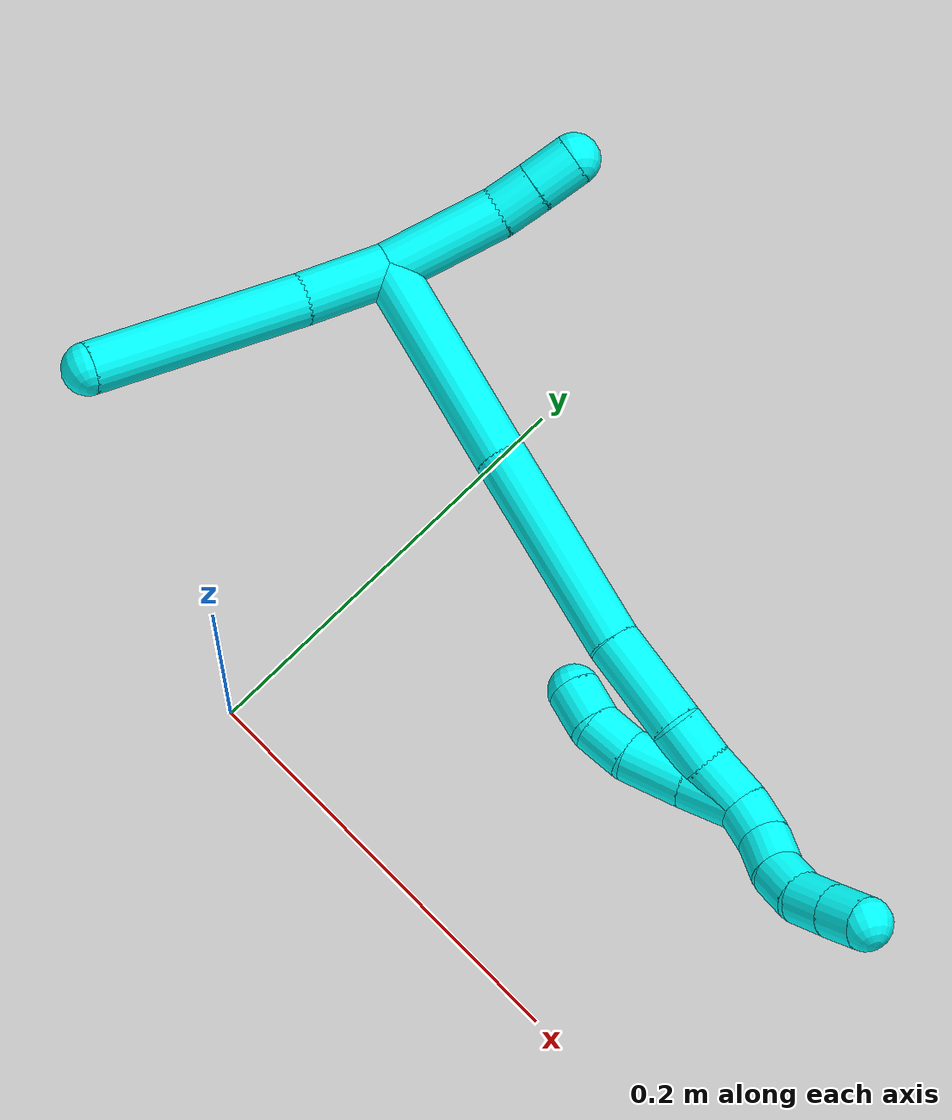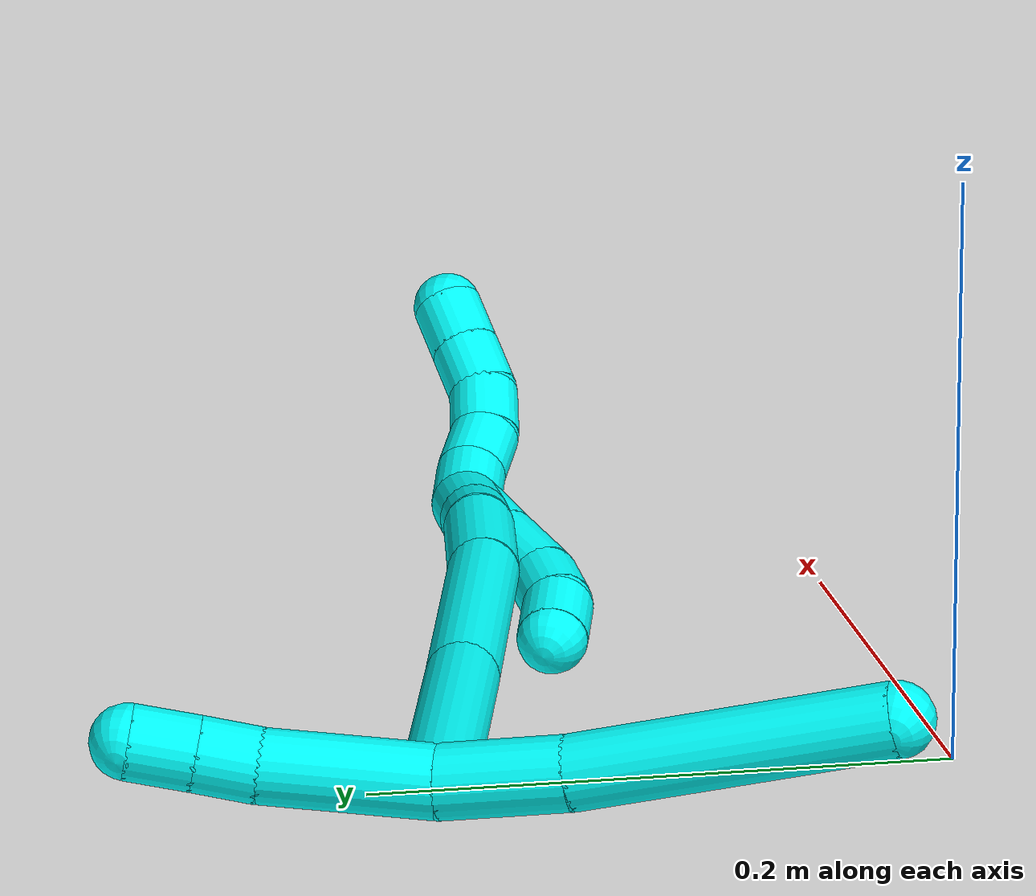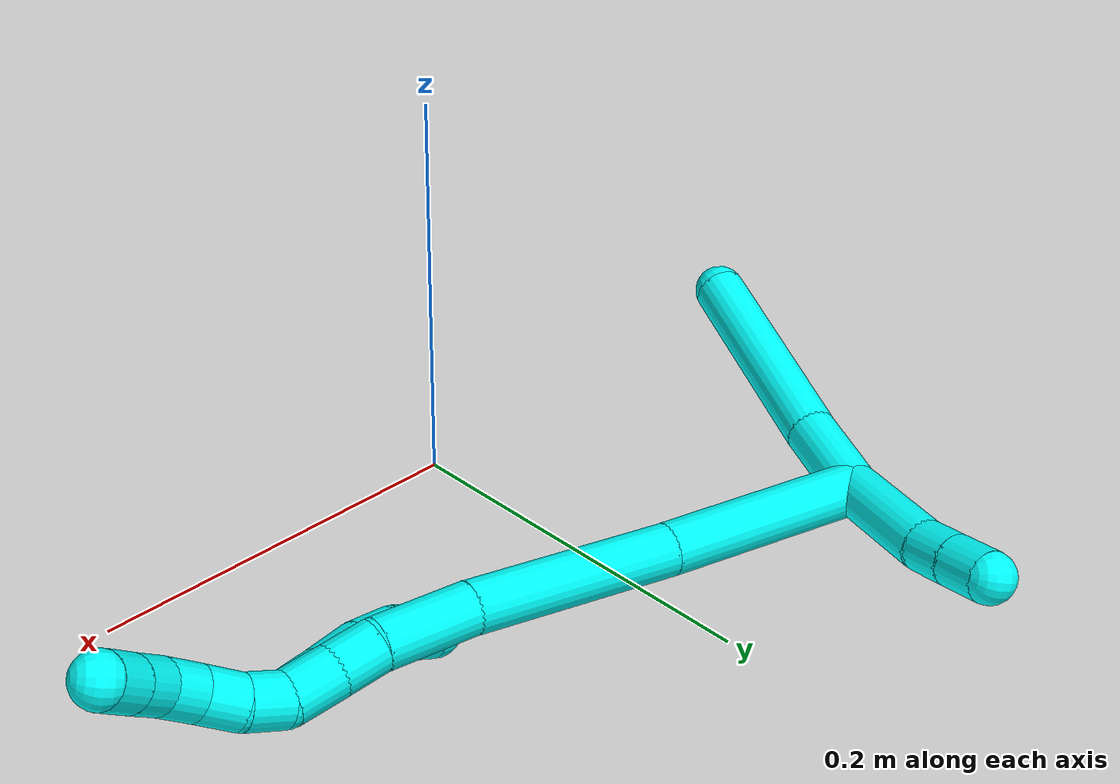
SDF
<sdf version="1.7">
 <world name="default">
  <model name="3">
   <static>0</static>
   <link name="3">
    <collision name="collision-cylinder-e_1_2_8">
     <pose>-0.01009 0.01889 -0.00238 -1.69613 -0.487317 0.549511</pose>
     <geometry><cylinder><radius>0.0125</radius><length>0.043095</length></cylinder></geometry>
     <surface>
      <friction><ode><mu>1.16</mu><mu2>1.16</mu2><slip1>0</slip1><slip2>0</slip2></ode></friction>
      <contact><ode><kp>1e+06</kp><kd>1</kd><max_vel>0</max_vel><min_depth>0.001</min_depth></ode></contact>
     </surface>
    </collision>
    <visual name="visual-cylinder-e_1_2_8">
     <pose>-0.01009 0.01889 -0.00238 -1.69613 -0.487317 0.549511</pose>
     <geometry><cylinder><radius>0.0125</radius><length>0.043095</length></cylinder></geometry>
     <material><ambient>0.003922 1 0.996078 1</ambient></material>
    </visual>
    <collision name="collision-cylinder-e_2_8_6">
     <pose>-0.049383 0.081968 -0.011953 -1.73216 -0.577987 0.672685</pose>
     <geometry><cylinder><radius>0.0125</radius><length>0.106905</length></cylinder></geometry>
     <surface>
      <friction><ode><mu>1.16</mu><mu2>1.16</mu2><slip1>0</slip1><slip2>0</slip2></ode></friction>
      <contact><ode><kp>1e+06</kp><kd>1</kd><max_vel>0</max_vel><min_depth>0.001</min_depth></ode></contact>
     </surface>
    </collision>
    <visual name="visual-cylinder-e_2_8_6">
     <pose>-0.049383 0.081968 -0.011953 -1.73216 -0.577987 0.672685</pose>
     <geometry><cylinder><radius>0.0125</radius><length>0.106905</length></cylinder></geometry>
     <material><ambient>0.003922 1 0.996078 1</ambient></material>
    </visual>
    <collision name="collision-cylinder-e_1_2_9">
     <pose>0.007841 -0.027206 0.003952 1.42656 0.277829 0.24078</pose>
     <geometry><cylinder><radius>0.0125</radius><length>0.057176</length></cylinder></geometry>
     <surface>
      <friction><ode><mu>1.16</mu><mu2>1.16</mu2><slip1>0</slip1><slip2>0</slip2></ode></friction>
      <contact><ode><kp>1e+06</kp><kd>1</kd><max_vel>0</max_vel><min_depth>0.001</min_depth></ode></contact>
     </surface>
    </collision>
    <visual name="visual-cylinder-e_1_2_9">
     <pose>0.007841 -0.027206 0.003952 1.42656 0.277829 0.24078</pose>
     <geometry><cylinder><radius>0.0125</radius><length>0.057176</length></cylinder></geometry>
     <material><ambient>0.003922 1 0.996078 1</ambient></material>
    </visual>
    <collision name="collision-cylinder-e_2_9_10">
     <pose>0.016895 -0.064535 0.009826 1.38303 0.117185 0.097051</pose>
     <geometry><cylinder><radius>0.0125</radius><length>0.020748</length></cylinder></geometry>
     <surface>
      <friction><ode><mu>1.16</mu><mu2>1.16</mu2><slip1>0</slip1><slip2>0</slip2></ode></friction>
      <contact><ode><kp>1e+06</kp><kd>1</kd><max_vel>0</max_vel><min_depth>0.001</min_depth></ode></contact>
     </surface>
    </collision>
    <visual name="visual-cylinder-e_2_9_10">
     <pose>0.016895 -0.064535 0.009826 1.38303 0.117185 0.097051</pose>
     <geometry><cylinder><radius>0.0125</radius><length>0.020748</length></cylinder></geometry>
     <material><ambient>0.003922 1 0.996078 1</ambient></material>
    </visual>
    <collision name="collision-cylinder-e_3_10_5">
     <pose>0.019396 -0.085375 0.014046 1.35971 0.117044 0.094658</pose>
     <geometry><cylinder><radius>0.0125</radius><length>0.022075</length></cylinder></geometry>
     <surface>
      <friction><ode><mu>1.16</mu><mu2>1.16</mu2><slip1>0</slip1><slip2>0</slip2></ode></friction>
      <contact><ode><kp>1e+06</kp><kd>1</kd><max_vel>0</max_vel><min_depth>0.001</min_depth></ode></contact>
     </surface>
    </collision>
    <visual name="visual-cylinder-e_3_10_5">
     <pose>0.019396 -0.085375 0.014046 1.35971 0.117044 0.094658</pose>
     <geometry><cylinder><radius>0.0125</radius><length>0.022075</length></cylinder></geometry>
     <material><ambient>0.003922 1 0.996078 1</ambient></material>
    </visual>
    <collision name="collision-cylinder-e_1_2_11">
     <pose>0.016881 -0.004861 -0.048818 3.04235 0.331407 2.56424</pose>
     <geometry><cylinder><radius>0.0125</radius><length>0.103766</length></cylinder></geometry>
     <surface>
      <friction><ode><mu>1.16</mu><mu2>1.16</mu2><slip1>0</slip1><slip2>0</slip2></ode></friction>
      <contact><ode><kp>1e+06</kp><kd>1</kd><max_vel>0</max_vel><min_depth>0.001</min_depth></ode></contact>
     </surface>
    </collision>
    <visual name="visual-cylinder-e_1_2_11">
     <pose>0.016881 -0.004861 -0.048818 3.04235 0.331407 2.56424</pose>
     <geometry><cylinder><radius>0.0125</radius><length>0.103766</length></cylinder></geometry>
     <material><ambient>0.003922 1 0.996078 1</ambient></material>
    </visual>
    <collision name="collision-cylinder-e_2_11_12">
     <pose>0.048477 -0.015282 -0.146015 3.02718 0.293444 2.4022</pose>
     <geometry><cylinder><radius>0.0125</radius><length>0.101744</length></cylinder></geometry>
     <surface>
      <friction><ode><mu>1.16</mu><mu2>1.16</mu2><slip1>0</slip1><slip2>0</slip2></ode></friction>
      <contact><ode><kp>1e+06</kp><kd>1</kd><max_vel>0</max_vel><min_depth>0.001</min_depth></ode></contact>
     </surface>
    </collision>
    <visual name="visual-cylinder-e_2_11_12">
     <pose>0.048477 -0.015282 -0.146015 3.02718 0.293444 2.4022</pose>
     <geometry><cylinder><radius>0.0125</radius><length>0.101744</length></cylinder></geometry>
     <material><ambient>0.003922 1 0.996078 1</ambient></material>
    </visual>
    <collision name="collision-cylinder-e_3_12_13">
     <pose>0.071151 -0.025533 -0.216229 2.92992 0.342342 2.03949</pose>
     <geometry><cylinder><radius>0.0125</radius><length>0.047418</length></cylinder></geometry>
     <surface>
      <friction><ode><mu>1.16</mu><mu2>1.16</mu2><slip1>0</slip1><slip2>0</slip2></ode></friction>
      <contact><ode><kp>1e+06</kp><kd>1</kd><max_vel>0</max_vel><min_depth>0.001</min_depth></ode></contact>
     </surface>
    </collision>
    <visual name="visual-cylinder-e_3_12_13">
     <pose>0.071151 -0.025533 -0.216229 2.92992 0.342342 2.03949</pose>
     <geometry><cylinder><radius>0.0125</radius><length>0.047418</length></cylinder></geometry>
     <material><ambient>0.003922 1 0.996078 1</ambient></material>
    </visual>
    <collision name="collision-cylinder-e_4_13_14">
     <pose>0.0847 -0.031963 -0.247492 2.95934 0.527915 2.4895</pose>
     <geometry><cylinder><radius>0.0125</radius><length>0.022195</length></cylinder></geometry>
     <surface>
      <friction><ode><mu>1.16</mu><mu2>1.16</mu2><slip1>0</slip1><slip2>0</slip2></ode></friction>
      <contact><ode><kp>1e+06</kp><kd>1</kd><max_vel>0</max_vel><min_depth>0.001</min_depth></ode></contact>
     </surface>
    </collision>
    <visual name="visual-cylinder-e_4_13_14">
     <pose>0.0847 -0.031963 -0.247492 2.95934 0.527915 2.4895</pose>
     <geometry><cylinder><radius>0.0125</radius><length>0.022195</length></cylinder></geometry>
     <material><ambient>0.003922 1 0.996078 1</ambient></material>
    </visual>
    <collision name="collision-cylinder-e_5_14_1">
     <pose>0.095913 -0.036764 -0.267584 2.86177 0.468989 2.07624</pose>
     <geometry><cylinder><radius>0.0125</radius><length>0.024877</length></cylinder></geometry>
     <surface>
      <friction><ode><mu>1.16</mu><mu2>1.16</mu2><slip1>0</slip1><slip2>0</slip2></ode></friction>
      <contact><ode><kp>1e+06</kp><kd>1</kd><max_vel>0</max_vel><min_depth>0.001</min_depth></ode></contact>
     </surface>
    </collision>
    <visual name="visual-cylinder-e_5_14_1">
     <pose>0.095913 -0.036764 -0.267584 2.86177 0.468989 2.07624</pose>
     <geometry><cylinder><radius>0.0125</radius><length>0.024877</length></cylinder></geometry>
     <material><ambient>0.003922 1 0.996078 1</ambient></material>
    </visual>
    <collision name="collision-cylinder-e_1_1_15">
     <pose>0.098538 -0.030569 -0.268194 -0.744317 -0.215797 0.084514</pose>
     <geometry><cylinder><radius>0.0125</radius><length>0.027985</length></cylinder></geometry>
     <surface>
      <friction><ode><mu>1.16</mu><mu2>1.16</mu2><slip1>0</slip1><slip2>0</slip2></ode></friction>
      <contact><ode><kp>1e+06</kp><kd>1</kd><max_vel>0</max_vel><min_depth>0.001</min_depth></ode></contact>
     </surface>
    </collision>
    <visual name="visual-cylinder-e_1_1_15">
     <pose>0.098538 -0.030569 -0.268194 -0.744317 -0.215797 0.084514</pose>
     <geometry><cylinder><radius>0.0125</radius><length>0.027985</length></cylinder></geometry>
     <material><ambient>0.003922 1 0.996078 1</ambient></material>
    </visual>
    <collision name="collision-cylinder-e_2_15_16">
     <pose>0.091569 -0.011863 -0.247214 -0.712871 -0.26842 0.100463</pose>
     <geometry><cylinder><radius>0.0125</radius><length>0.029961</length></cylinder></geometry>
     <surface>
      <friction><ode><mu>1.16</mu><mu2>1.16</mu2><slip1>0</slip1><slip2>0</slip2></ode></friction>
      <contact><ode><kp>1e+06</kp><kd>1</kd><max_vel>0</max_vel><min_depth>0.001</min_depth></ode></contact>
     </surface>
    </collision>
    <visual name="visual-cylinder-e_2_15_16">
     <pose>0.091569 -0.011863 -0.247214 -0.712871 -0.26842 0.100463</pose>
     <geometry><cylinder><radius>0.0125</radius><length>0.029961</length></cylinder></geometry>
     <material><ambient>0.003922 1 0.996078 1</ambient></material>
    </visual>
    <collision name="collision-cylinder-e_3_16_17">
     <pose>0.084884 0.002068 -0.227063 -0.452534 -0.258528 0.059831</pose>
     <geometry><cylinder><radius>0.0125</radius><length>0.021219</length></cylinder></geometry>
     <surface>
      <friction><ode><mu>1.16</mu><mu2>1.16</mu2><slip1>0</slip1><slip2>0</slip2></ode></friction>
      <contact><ode><kp>1e+06</kp><kd>1</kd><max_vel>0</max_vel><min_depth>0.001</min_depth></ode></contact>
     </surface>
    </collision>
    <visual name="visual-cylinder-e_3_16_17">
     <pose>0.084884 0.002068 -0.227063 -0.452534 -0.258528 0.059831</pose>
     <geometry><cylinder><radius>0.0125</radius><length>0.021219</length></cylinder></geometry>
     <material><ambient>0.003922 1 0.996078 1</ambient></material>
    </visual>
    <collision name="collision-cylinder-e_4_17_4">
     <pose>0.081424 0.00814 -0.20757 -0.15338 -0.071851 0.005523</pose>
     <geometry><cylinder><radius>0.0125</radius><length>0.020835</length></cylinder></geometry>
     <surface>
      <friction><ode><mu>1.16</mu><mu2>1.16</mu2><slip1>0</slip1><slip2>0</slip2></ode></friction>
      <contact><ode><kp>1e+06</kp><kd>1</kd><max_vel>0</max_vel><min_depth>0.001</min_depth></ode></contact>
     </surface>
    </collision>
    <visual name="visual-cylinder-e_4_17_4">
     <pose>0.081424 0.00814 -0.20757 -0.15338 -0.071851 0.005523</pose>
     <geometry><cylinder><radius>0.0125</radius><length>0.020835</length></cylinder></geometry>
     <material><ambient>0.003922 1 0.996078 1</ambient></material>
    </visual>
    <collision name="collision-cylinder-e_1_1_18">
     <pose>0.101979 -0.041593 -0.288081 2.96411 0.044481 0.489978</pose>
     <geometry><cylinder><radius>0.0125</radius><length>0.02</length></cylinder></geometry>
     <surface>
      <friction><ode><mu>1.16</mu><mu2>1.16</mu2><slip1>0</slip1><slip2>0</slip2></ode></friction>
      <contact><ode><kp>1e+06</kp><kd>1</kd><max_vel>0</max_vel><min_depth>0.001</min_depth></ode></contact>
     </surface>
    </collision>
    <visual name="visual-cylinder-e_1_1_18">
     <pose>0.101979 -0.041593 -0.288081 2.96411 0.044481 0.489978</pose>
     <geometry><cylinder><radius>0.0125</radius><length>0.02</length></cylinder></geometry>
     <material><ambient>0.003922 1 0.996078 1</ambient></material>
    </visual>
    <collision name="collision-cylinder-e_2_18_19">
     <pose>0.100672 -0.044033 -0.307736 3.07279 -0.176129 -2.39824</pose>
     <geometry><cylinder><radius>0.0125</radius><length>0.02</length></cylinder></geometry>
     <surface>
      <friction><ode><mu>1.16</mu><mu2>1.16</mu2><slip1>0</slip1><slip2>0</slip2></ode></friction>
      <contact><ode><kp>1e+06</kp><kd>1</kd><max_vel>0</max_vel><min_depth>0.001</min_depth></ode></contact>
     </surface>
    </collision>
    <visual name="visual-cylinder-e_2_18_19">
     <pose>0.100672 -0.044033 -0.307736 3.07279 -0.176129 -2.39824</pose>
     <geometry><cylinder><radius>0.0125</radius><length>0.02</length></cylinder></geometry>
     <material><ambient>0.003922 1 0.996078 1</ambient></material>
    </visual>
    <collision name="collision-cylinder-e_3_19_20">
     <pose>0.096811 -0.048247 -0.326671 2.77135 -0.212425 -1.0351</pose>
     <geometry><cylinder><radius>0.0125</radius><length>0.02</length></cylinder></geometry>
     <surface>
      <friction><ode><mu>1.16</mu><mu2>1.16</mu2><slip1>0</slip1><slip2>0</slip2></ode></friction>
      <contact><ode><kp>1e+06</kp><kd>1</kd><max_vel>0</max_vel><min_depth>0.001</min_depth></ode></contact>
     </surface>
    </collision>
    <visual name="visual-cylinder-e_3_19_20">
     <pose>0.096811 -0.048247 -0.326671 2.77135 -0.212425 -1.0351</pose>
     <geometry><cylinder><radius>0.0125</radius><length>0.02</length></cylinder></geometry>
     <material><ambient>0.003922 1 0.996078 1</ambient></material>
    </visual>
    <collision name="collision-cylinder-e_4_20_21">
     <pose>0.092761 -0.058088 -0.3433 2.44364 -0.195466 -0.526401</pose>
     <geometry><cylinder><radius>0.0125</radius><length>0.02</length></cylinder></geometry>
     <surface>
      <friction><ode><mu>1.16</mu><mu2>1.16</mu2><slip1>0</slip1><slip2>0</slip2></ode></friction>
      <contact><ode><kp>1e+06</kp><kd>1</kd><max_vel>0</max_vel><min_depth>0.001</min_depth></ode></contact>
     </surface>
    </collision>
    <visual name="visual-cylinder-e_4_20_21">
     <pose>0.092761 -0.058088 -0.3433 2.44364 -0.195466 -0.526401</pose>
     <geometry><cylinder><radius>0.0125</radius><length>0.02</length></cylinder></geometry>
     <material><ambient>0.003922 1 0.996078 1</ambient></material>
    </visual>
    <collision name="collision-cylinder-e_5_21_3">
     <pose>0.088671 -0.070795 -0.358191 2.42672 -0.21643 -0.566145</pose>
     <geometry><cylinder><radius>0.0125</radius><length>0.02</length></cylinder></geometry>
     <surface>
      <friction><ode><mu>1.16</mu><mu2>1.16</mu2><slip1>0</slip1><slip2>0</slip2></ode></friction>
      <contact><ode><kp>1e+06</kp><kd>1</kd><max_vel>0</max_vel><min_depth>0.001</min_depth></ode></contact>
     </surface>
    </collision>
    <visual name="visual-cylinder-e_5_21_3">
     <pose>0.088671 -0.070795 -0.358191 2.42672 -0.21643 -0.566145</pose>
     <geometry><cylinder><radius>0.0125</radius><length>0.02</length></cylinder></geometry>
     <material><ambient>0.003922 1 0.996078 1</ambient></material>
    </visual>
    <collision name="collision-sphere-3">
     <pose>0.086524 -0.077197 -0.365566 0 -0 0</pose>
     <geometry><sphere><radius>0.0125</radius></sphere></geometry>
     <surface>
      <friction><ode><mu>1.16</mu><mu2>1.16</mu2><slip1>0</slip1><slip2>0</slip2></ode></friction>
      <contact><ode><kp>1e+06</kp><kd>1</kd><max_vel>0</max_vel><min_depth>0.001</min_depth></ode></contact>
     </surface>
    </collision>
    <visual name="visual-sphere-3">
     <pose>0.086524 -0.077197 -0.365566 0 -0 0</pose>
     <geometry><sphere><radius>0.0125</radius></sphere></geometry>
     <material><ambient>0.003922 1 0.996078 1</ambient></material>
    </visual>
    <collision name="collision-sphere-21">
     <pose>0.090818 -0.064393 -0.350815 0 -0 0</pose>
     <geometry><sphere><radius>0.0125</radius></sphere></geometry>
     <surface>
      <friction><ode><mu>1.16</mu><mu2>1.16</mu2><slip1>0</slip1><slip2>0</slip2></ode></friction>
      <contact><ode><kp>1e+06</kp><kd>1</kd><max_vel>0</max_vel><min_depth>0.001</min_depth></ode></contact>
     </surface>
    </collision>
    <visual name="visual-sphere-21">
     <pose>0.090818 -0.064393 -0.350815 0 -0 0</pose>
     <geometry><sphere><radius>0.0125</radius></sphere></geometry>
     <material><ambient>0.003922 1 0.996078 1</ambient></material>
    </visual>
    <collision name="collision-sphere-20">
     <pose>0.094703 -0.051784 -0.335784 0 -0 0</pose>
     <geometry><sphere><radius>0.0125</radius></sphere></geometry>
     <surface>
      <friction><ode><mu>1.16</mu><mu2>1.16</mu2><slip1>0</slip1><slip2>0</slip2></ode></friction>
      <contact><ode><kp>1e+06</kp><kd>1</kd><max_vel>0</max_vel><min_depth>0.001</min_depth></ode></contact>
     </surface>
    </collision>
    <visual name="visual-sphere-20">
     <pose>0.094703 -0.051784 -0.335784 0 -0 0</pose>
     <geometry><sphere><radius>0.0125</radius></sphere></geometry>
     <material><ambient>0.003922 1 0.996078 1</ambient></material>
    </visual>
    <collision name="collision-sphere-19">
     <pose>0.09892 -0.04471 -0.317558 0 -0 0</pose>
     <geometry><sphere><radius>0.0125</radius></sphere></geometry>
     <surface>
      <friction><ode><mu>1.16</mu><mu2>1.16</mu2><slip1>0</slip1><slip2>0</slip2></ode></friction>
      <contact><ode><kp>1e+06</kp><kd>1</kd><max_vel>0</max_vel><min_depth>0.001</min_depth></ode></contact>
     </surface>
    </collision>
    <visual name="visual-sphere-19">
     <pose>0.09892 -0.04471 -0.317558 0 -0 0</pose>
     <geometry><sphere><radius>0.0125</radius></sphere></geometry>
     <material><ambient>0.003922 1 0.996078 1</ambient></material>
    </visual>
    <collision name="collision-sphere-5">
     <pose>0.020685 -0.096094 0.016343 0 -0 0</pose>
     <geometry><sphere><radius>0.0125</radius></sphere></geometry>
     <surface>
      <friction><ode><mu>1.16</mu><mu2>1.16</mu2><slip1>0</slip1><slip2>0</slip2></ode></friction>
      <contact><ode><kp>1e+06</kp><kd>1</kd><max_vel>0</max_vel><min_depth>0.001</min_depth></ode></contact>
     </surface>
    </collision>
    <visual name="visual-sphere-5">
     <pose>0.020685 -0.096094 0.016343 0 -0 0</pose>
     <geometry><sphere><radius>0.0125</radius></sphere></geometry>
     <material><ambient>0.003922 1 0.996078 1</ambient></material>
    </visual>
    <collision name="collision-sphere-10">
     <pose>0.018108 -0.074657 0.01175 0 -0 0</pose>
     <geometry><sphere><radius>0.0125</radius></sphere></geometry>
     <surface>
      <friction><ode><mu>1.16</mu><mu2>1.16</mu2><slip1>0</slip1><slip2>0</slip2></ode></friction>
      <contact><ode><kp>1e+06</kp><kd>1</kd><max_vel>0</max_vel><min_depth>0.001</min_depth></ode></contact>
     </surface>
    </collision>
    <visual name="visual-sphere-10">
     <pose>0.018108 -0.074657 0.01175 0 -0 0</pose>
     <geometry><sphere><radius>0.0125</radius></sphere></geometry>
     <material><ambient>0.003922 1 0.996078 1</ambient></material>
    </visual>
    <collision name="collision-sphere-6">
     <pose>-0.078586 0.126156 -0.019146 0 -0 0</pose>
     <geometry><sphere><radius>0.0125</radius></sphere></geometry>
     <surface>
      <friction><ode><mu>1.16</mu><mu2>1.16</mu2><slip1>0</slip1><slip2>0</slip2></ode></friction>
      <contact><ode><kp>1e+06</kp><kd>1</kd><max_vel>0</max_vel><min_depth>0.001</min_depth></ode></contact>
     </surface>
    </collision>
    <visual name="visual-sphere-6">
     <pose>-0.078586 0.126156 -0.019146 0 -0 0</pose>
     <geometry><sphere><radius>0.0125</radius></sphere></geometry>
     <material><ambient>0.003922 1 0.996078 1</ambient></material>
    </visual>
    <collision name="collision-sphere-9">
     <pose>0.015682 -0.054413 0.007903 0 -0 0</pose>
     <geometry><sphere><radius>0.0125</radius></sphere></geometry>
     <surface>
      <friction><ode><mu>1.16</mu><mu2>1.16</mu2><slip1>0</slip1><slip2>0</slip2></ode></friction>
      <contact><ode><kp>1e+06</kp><kd>1</kd><max_vel>0</max_vel><min_depth>0.001</min_depth></ode></contact>
     </surface>
    </collision>
    <visual name="visual-sphere-9">
     <pose>0.015682 -0.054413 0.007903 0 -0 0</pose>
     <geometry><sphere><radius>0.0125</radius></sphere></geometry>
     <material><ambient>0.003922 1 0.996078 1</ambient></material>
    </visual>
    <collision name="collision-sphere-2">
     <geometry><sphere><radius>0.0125</radius></sphere></geometry>
     <surface>
      <friction><ode><mu>1.16</mu><mu2>1.16</mu2><slip1>0</slip1><slip2>0</slip2></ode></friction>
      <contact><ode><kp>1e+06</kp><kd>1</kd><max_vel>0</max_vel><min_depth>0.001</min_depth></ode></contact>
     </surface>
    </collision>
    <visual name="visual-sphere-2">
     <geometry><sphere><radius>0.0125</radius></sphere></geometry>
     <material><ambient>0.003922 1 0.996078 1</ambient></material>
    </visual>
    <collision name="collision-sphere-8">
     <pose>-0.020179 0.03778 -0.00476 0 -0 0</pose>
     <geometry><sphere><radius>0.0125</radius></sphere></geometry>
     <surface>
      <friction><ode><mu>1.16</mu><mu2>1.16</mu2><slip1>0</slip1><slip2>0</slip2></ode></friction>
      <contact><ode><kp>1e+06</kp><kd>1</kd><max_vel>0</max_vel><min_depth>0.001</min_depth></ode></contact>
     </surface>
    </collision>
    <visual name="visual-sphere-8">
     <pose>-0.020179 0.03778 -0.00476 0 -0 0</pose>
     <geometry><sphere><radius>0.0125</radius></sphere></geometry>
     <material><ambient>0.003922 1 0.996078 1</ambient></material>
    </visual>
    <collision name="collision-sphere-11">
     <pose>0.033763 -0.009722 -0.097636 0 -0 0</pose>
     <geometry><sphere><radius>0.0125</radius></sphere></geometry>
     <surface>
      <friction><ode><mu>1.16</mu><mu2>1.16</mu2><slip1>0</slip1><slip2>0</slip2></ode></friction>
      <contact><ode><kp>1e+06</kp><kd>1</kd><max_vel>0</max_vel><min_depth>0.001</min_depth></ode></contact>
     </surface>
    </collision>
    <visual name="visual-sphere-11">
     <pose>0.033763 -0.009722 -0.097636 0 -0 0</pose>
     <geometry><sphere><radius>0.0125</radius></sphere></geometry>
     <material><ambient>0.003922 1 0.996078 1</ambient></material>
    </visual>
    <collision name="collision-sphere-12">
     <pose>0.063192 -0.020841 -0.194395 0 -0 0</pose>
     <geometry><sphere><radius>0.0125</radius></sphere></geometry>
     <surface>
      <friction><ode><mu>1.16</mu><mu2>1.16</mu2><slip1>0</slip1><slip2>0</slip2></ode></friction>
      <contact><ode><kp>1e+06</kp><kd>1</kd><max_vel>0</max_vel><min_depth>0.001</min_depth></ode></contact>
     </surface>
    </collision>
    <visual name="visual-sphere-12">
     <pose>0.063192 -0.020841 -0.194395 0 -0 0</pose>
     <geometry><sphere><radius>0.0125</radius></sphere></geometry>
     <material><ambient>0.003922 1 0.996078 1</ambient></material>
    </visual>
    <collision name="collision-sphere-13">
     <pose>0.07911 -0.030225 -0.238064 0 -0 0</pose>
     <geometry><sphere><radius>0.0125</radius></sphere></geometry>
     <surface>
      <friction><ode><mu>1.16</mu><mu2>1.16</mu2><slip1>0</slip1><slip2>0</slip2></ode></friction>
      <contact><ode><kp>1e+06</kp><kd>1</kd><max_vel>0</max_vel><min_depth>0.001</min_depth></ode></contact>
     </surface>
    </collision>
    <visual name="visual-sphere-13">
     <pose>0.07911 -0.030225 -0.238064 0 -0 0</pose>
     <geometry><sphere><radius>0.0125</radius></sphere></geometry>
     <material><ambient>0.003922 1 0.996078 1</ambient></material>
    </visual>
    <collision name="collision-sphere-14">
     <pose>0.09029 -0.0337 -0.25692 0 -0 0</pose>
     <geometry><sphere><radius>0.0125</radius></sphere></geometry>
     <surface>
      <friction><ode><mu>1.16</mu><mu2>1.16</mu2><slip1>0</slip1><slip2>0</slip2></ode></friction>
      <contact><ode><kp>1e+06</kp><kd>1</kd><max_vel>0</max_vel><min_depth>0.001</min_depth></ode></contact>
     </surface>
    </collision>
    <visual name="visual-sphere-14">
     <pose>0.09029 -0.0337 -0.25692 0 -0 0</pose>
     <geometry><sphere><radius>0.0125</radius></sphere></geometry>
     <material><ambient>0.003922 1 0.996078 1</ambient></material>
    </visual>
    <collision name="collision-sphere-1">
     <pose>0.101535 -0.039829 -0.278248 0 -0 0</pose>
     <geometry><sphere><radius>0.0125</radius></sphere></geometry>
     <surface>
      <friction><ode><mu>1.16</mu><mu2>1.16</mu2><slip1>0</slip1><slip2>0</slip2></ode></friction>
      <contact><ode><kp>1e+06</kp><kd>1</kd><max_vel>0</max_vel><min_depth>0.001</min_depth></ode></contact>
     </surface>
    </collision>
    <visual name="visual-sphere-1">
     <pose>0.101535 -0.039829 -0.278248 0 -0 0</pose>
     <geometry><sphere><radius>0.0125</radius></sphere></geometry>
     <material><ambient>0.003922 1 0.996078 1</ambient></material>
    </visual>
    <collision name="collision-sphere-18">
     <pose>0.102424 -0.043356 -0.297914 0 -0 0</pose>
     <geometry><sphere><radius>0.0125</radius></sphere></geometry>
     <surface>
      <friction><ode><mu>1.16</mu><mu2>1.16</mu2><slip1>0</slip1><slip2>0</slip2></ode></friction>
      <contact><ode><kp>1e+06</kp><kd>1</kd><max_vel>0</max_vel><min_depth>0.001</min_depth></ode></contact>
     </surface>
    </collision>
    <visual name="visual-sphere-18">
     <pose>0.102424 -0.043356 -0.297914 0 -0 0</pose>
     <geometry><sphere><radius>0.0125</radius></sphere></geometry>
     <material><ambient>0.003922 1 0.996078 1</ambient></material>
    </visual>
    <collision name="collision-sphere-15">
     <pose>0.095542 -0.02131 -0.258141 0 -0 0</pose>
     <geometry><sphere><radius>0.0125</radius></sphere></geometry>
     <surface>
      <friction><ode><mu>1.16</mu><mu2>1.16</mu2><slip1>0</slip1><slip2>0</slip2></ode></friction>
      <contact><ode><kp>1e+06</kp><kd>1</kd><max_vel>0</max_vel><min_depth>0.001</min_depth></ode></contact>
     </surface>
    </collision>
    <visual name="visual-sphere-15">
     <pose>0.095542 -0.02131 -0.258141 0 -0 0</pose>
     <geometry><sphere><radius>0.0125</radius></sphere></geometry>
     <material><ambient>0.003922 1 0.996078 1</ambient></material>
    </visual>
    <collision name="collision-sphere-16">
     <pose>0.087596 -0.002417 -0.236288 0 -0 0</pose>
     <geometry><sphere><radius>0.0125</radius></sphere></geometry>
     <surface>
      <friction><ode><mu>1.16</mu><mu2>1.16</mu2><slip1>0</slip1><slip2>0</slip2></ode></friction>
      <contact><ode><kp>1e+06</kp><kd>1</kd><max_vel>0</max_vel><min_depth>0.001</min_depth></ode></contact>
     </surface>
    </collision>
    <visual name="visual-sphere-16">
     <pose>0.087596 -0.002417 -0.236288 0 -0 0</pose>
     <geometry><sphere><radius>0.0125</radius></sphere></geometry>
     <material><ambient>0.003922 1 0.996078 1</ambient></material>
    </visual>
    <collision name="collision-sphere-17">
     <pose>0.082172 0.006553 -0.217839 0 -0 0</pose>
     <geometry><sphere><radius>0.0125</radius></sphere></geometry>
     <surface>
      <friction><ode><mu>1.16</mu><mu2>1.16</mu2><slip1>0</slip1><slip2>0</slip2></ode></friction>
      <contact><ode><kp>1e+06</kp><kd>1</kd><max_vel>0</max_vel><min_depth>0.001</min_depth></ode></contact>
     </surface>
    </collision>
    <visual name="visual-sphere-17">
     <pose>0.082172 0.006553 -0.217839 0 -0 0</pose>
     <geometry><sphere><radius>0.0125</radius></sphere></geometry>
     <material><ambient>0.003922 1 0.996078 1</ambient></material>
    </visual>
    <collision name="collision-sphere-4">
     <pose>0.080676 0.009728 -0.197301 0 -0 0</pose>
     <geometry><sphere><radius>0.0125</radius></sphere></geometry>
     <surface>
      <friction><ode><mu>1.16</mu><mu2>1.16</mu2><slip1>0</slip1><slip2>0</slip2></ode></friction>
      <contact><ode><kp>1e+06</kp><kd>1</kd><max_vel>0</max_vel><min_depth>0.001</min_depth></ode></contact>
     </surface>
    </collision>
    <visual name="visual-sphere-4">
     <pose>0.080676 0.009728 -0.197301 0 -0 0</pose>
     <geometry><sphere><radius>0.0125</radius></sphere></geometry>
     <material><ambient>0.003922 1 0.996078 1</ambient></material>
    </visual>
    <inertial>
     <pose>0.037938 -0.008465 -0.132667 0 -0 0</pose>
     <mass>0.75</mass>
     <inertia>
      <ixx>0.000143</ixx>
      <ixy>0</ixy>
      <ixz>0</ixz>
      <iyy>0.000376</iyy>
      <iyz>0</iyz>
      <izz>-8.1e-05</izz>
     </inertia>
    </inertial>
   </link>
   <pose>-0.094114 0.192034 0.036519 -2.23609 1.10178 0.503368</pose>
  </model>
 </world>
</sdf>
